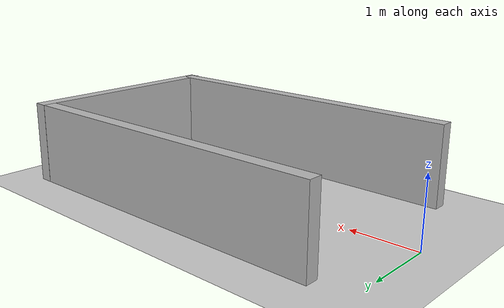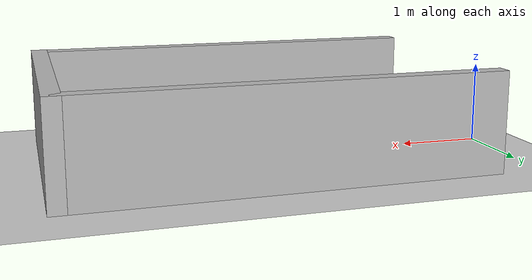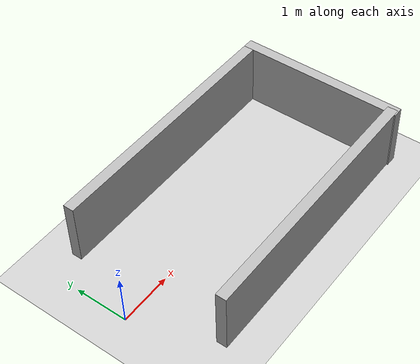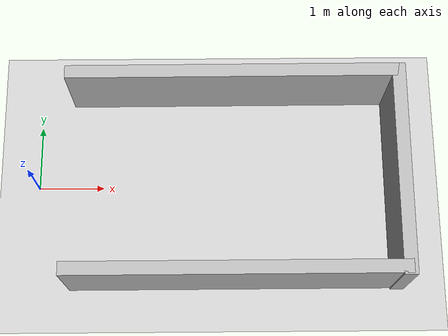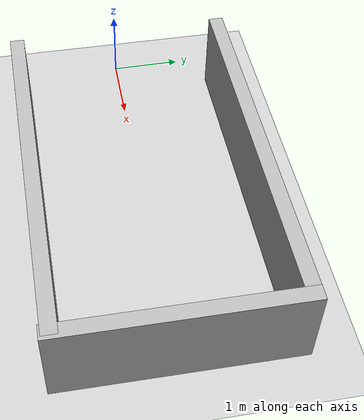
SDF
<?xml version="1.0"?>
<sdf version="1.6">
  <world name="v2-04g-r6-i1-compile-support-maneuver-s5147">
    <gravity>0 0 -9.81</gravity>
    <physics name="v2_deterministic" type="ode">
      <max_step_size>0.002</max_step_size>
      <real_time_update_rate>500</real_time_update_rate>
    </physics>
    <include>
      <uri>model://sun</uri>
    </include>
    <include>
      <uri>model://ground_plane</uri>
    </include>
    <model name="bay-left">
      <static>true</static>
      <pose>3.001264547 1.477266329 0.600000000 0 0 0.002239956</pose>
      <link name="link">
        <collision name="collision">
          <geometry>
            <box>
              <size>5.000000 0.200000 1.200000</size>
            </box>
          </geometry>
        </collision>
        <visual name="visual">
          <geometry>
            <box>
              <size>5.000000 0.200000 1.200000</size>
            </box>
          </geometry>
        </visual>
      </link>
    </model>
    <model name="bay-right">
      <static>true</static>
      <pose>3.018149737 -1.495819893 0.600000000 0 0 0.000961862</pose>
      <link name="link">
        <collision name="collision">
          <geometry>
            <box>
              <size>5.000000 0.200000 1.200000</size>
            </box>
          </geometry>
        </collision>
        <visual name="visual">
          <geometry>
            <box>
              <size>5.000000 0.200000 1.200000</size>
            </box>
          </geometry>
        </visual>
      </link>
    </model>
    <model name="bay-back">
      <static>true</static>
      <pose>5.476978104 -0.016361199 0.600000000 0 0 -0.004761370</pose>
      <link name="link">
        <collision name="collision">
          <geometry>
            <box>
              <size>0.200000 3.200000 1.200000</size>
            </box>
          </geometry>
        </collision>
        <visual name="visual">
          <geometry>
            <box>
              <size>0.200000 3.200000 1.200000</size>
            </box>
          </geometry>
        </visual>
      </link>
    </model>
  </world>
</sdf>
